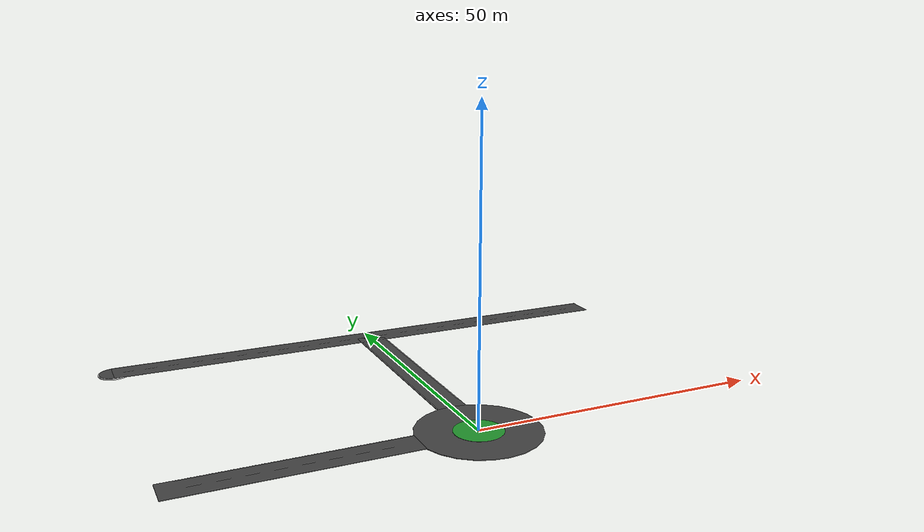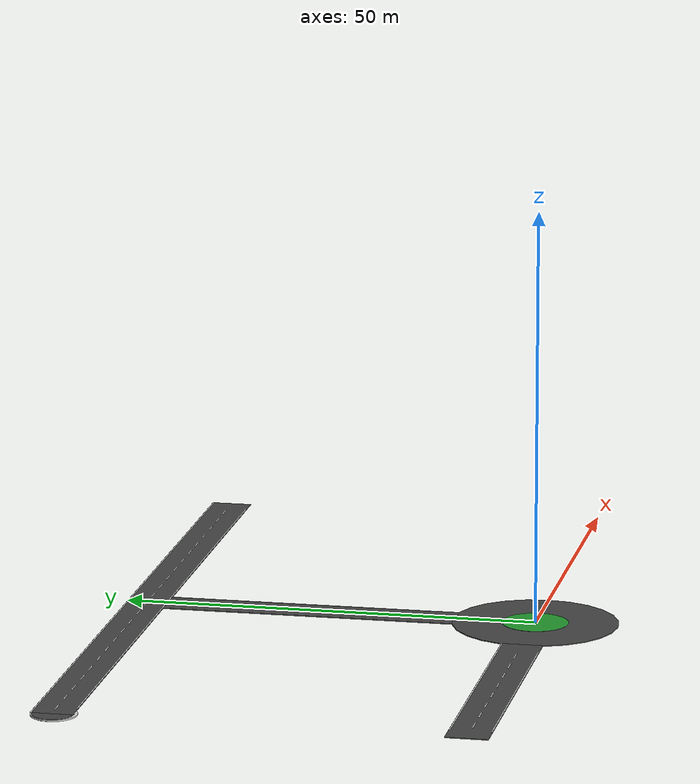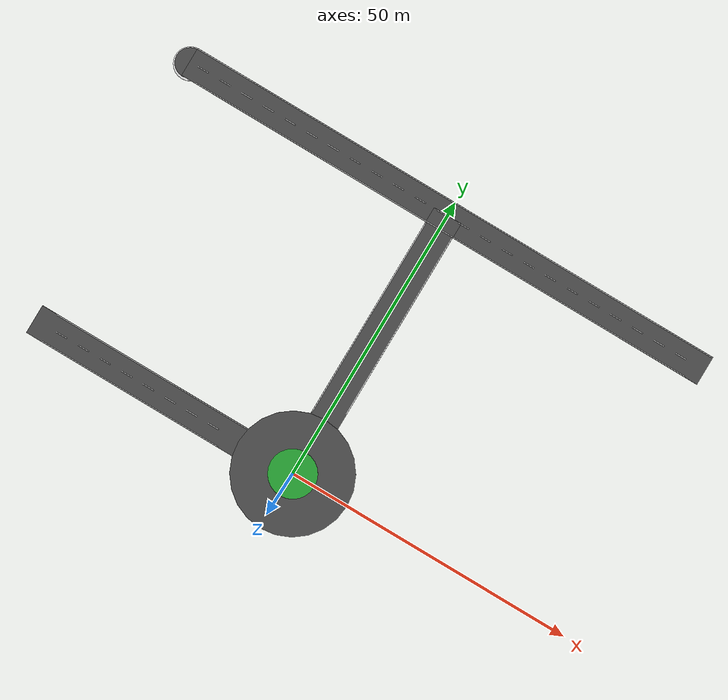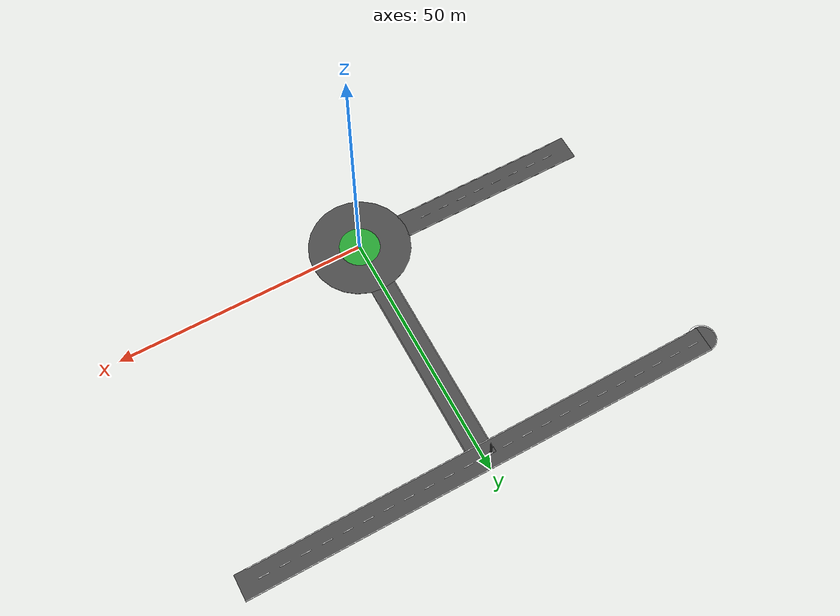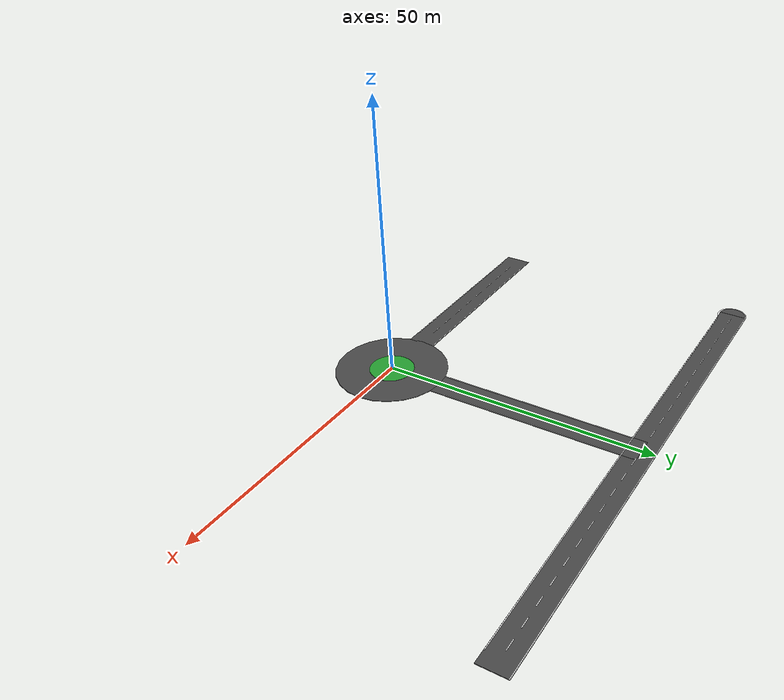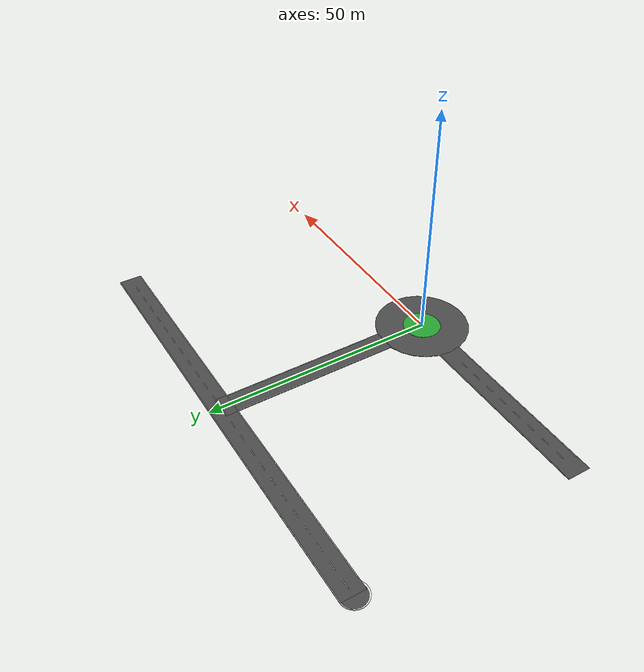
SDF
<sdf version="1.7">
 <world name="sehir_dunyasi_final_son_hali">
  <model name="kesisim_merkez_kavsak">
   <static>1</static>
   <link name="k_link">
    <collision name="k_asfalt_c">
     <geometry><cylinder><radius>10</radius><length>0.1</length></cylinder></geometry>
    </collision>
    <visual name="k_asfalt_v">
     <geometry><cylinder><radius>10</radius><length>0.1</length></cylinder></geometry>
     <material><script><name>Gazebo/DarkGrey</name><uri>__default__</uri></script></material>
    </visual>
    <collision name="k_ada_c">
     <pose>0 0 0.05 0 -0 0</pose>
     <geometry><cylinder><radius>4</radius><length>0.04</length></cylinder></geometry>
    </collision>
    <visual name="k_ada_v">
     <pose>0 0 0.05 0 -0 0</pose>
     <geometry><cylinder><radius>4</radius><length>0.04</length></cylinder></geometry>
     <material><script><name>Gazebo/Green</name><uri>__default__</uri></script></material>
    </visual>
   </link>
  </model>
  <model name="yol_m_k">
   <static>1</static>
   <pose>-1.3e-05 28.6156 0 0 -0 1.5707</pose>
   <link name="link">
    <collision name="c"><geometry><box><size>38 5 0.1</size></box></geometry></collision>
    <visual name="v">
     <geometry><box><size>38 5 0.1</size></box></geometry>
     <material><script><name>Gazebo/DarkGrey</name><uri>__default__</uri></script></material>
    </visual>
    <visual name="vc1">
     <pose>-14 0 0.05 0 -0 0</pose>
     <geometry><box><size>2 0.15 0.005</size></box></geometry>
     <material><script><name>Gazebo/White</name><uri>__default__</uri></script></material>
    </visual>
    <visual name="vc2">
     <pose>-10 0 0.05 0 -0 0</pose>
     <geometry><box><size>2 0.15 0.005</size></box></geometry>
     <material><script><name>Gazebo/White</name><uri>__default__</uri></script></material>
    </visual>
    <visual name="vc3">
     <pose>-6 0 0.05 0 -0 0</pose>
     <geometry><box><size>2 0.15 0.005</size></box></geometry>
     <material><script><name>Gazebo/White</name><uri>__default__</uri></script></material>
    </visual>
    <visual name="vc4">
     <pose>-2 0 0.05 0 -0 0</pose>
     <geometry><box><size>2 0.15 0.005</size></box></geometry>
     <material><script><name>Gazebo/White</name><uri>__default__</uri></script></material>
    </visual>
    <visual name="vc5">
     <pose>2 0 0.05 0 -0 0</pose>
     <geometry><box><size>2 0.15 0.005</size></box></geometry>
     <material><script><name>Gazebo/White</name><uri>__default__</uri></script></material>
    </visual>
    <visual name="vc6">
     <pose>6 0 0.05 0 -0 0</pose>
     <geometry><box><size>2 0.15 0.005</size></box></geometry>
     <material><script><name>Gazebo/White</name><uri>__default__</uri></script></material>
    </visual>
    <visual name="vc7">
     <pose>10 0 0.05 0 -0 0</pose>
     <geometry><box><size>2 0.15 0.005</size></box></geometry>
     <material><script><name>Gazebo/White</name><uri>__default__</uri></script></material>
    </visual>
    <visual name="vc8">
     <pose>14 0 0.05 0 -0 0</pose>
     <geometry><box><size>2 0.15 0.005</size></box></geometry>
     <material><script><name>Gazebo/White</name><uri>__default__</uri></script></material>
    </visual>
    <visual name="sag_cizgi">
     <pose>0 2.4 0.05 0 -0 0</pose>
     <geometry><box><size>32.5 0.15 0.005</size></box></geometry>
     <material><script><name>Gazebo/White</name><uri>__default__</uri></script></material>
    </visual>
    <visual name="sol_cizgi">
     <pose>0 -2.4 0.05 0 -0 0</pose>
     <geometry><box><size>32.5 0.15 0.005</size></box></geometry>
     <material><script><name>Gazebo/White</name><uri>__default__</uri></script></material>
    </visual>
   </link>
  </model>
  <model name="yol_m_b">
   <static>1</static>
   <pose>-28.606 0 0 0 -0 0</pose>
   <link name="link">
    <collision name="c"><geometry><box><size>38 5 0.1</size></box></geometry></collision>
    <visual name="v">
     <geometry><box><size>38 5 0.1</size></box></geometry>
     <material><script><name>Gazebo/DarkGrey</name><uri>__default__</uri></script></material>
    </visual>
    <visual name="vc1">
     <pose>-14 0 0.05 0 -0 0</pose>
     <geometry><box><size>2 0.15 0.005</size></box></geometry>
     <material><script><name>Gazebo/White</name><uri>__default__</uri></script></material>
    </visual>
    <visual name="vc2">
     <pose>-10 0 0.05 0 -0 0</pose>
     <geometry><box><size>2 0.15 0.005</size></box></geometry>
     <material><script><name>Gazebo/White</name><uri>__default__</uri></script></material>
    </visual>
    <visual name="vc3">
     <pose>-6 0 0.05 0 -0 0</pose>
     <geometry><box><size>2 0.15 0.005</size></box></geometry>
     <material><script><name>Gazebo/White</name><uri>__default__</uri></script></material>
    </visual>
    <visual name="vc4">
     <pose>-2 0 0.05 0 -0 0</pose>
     <geometry><box><size>2 0.15 0.005</size></box></geometry>
     <material><script><name>Gazebo/White</name><uri>__default__</uri></script></material>
    </visual>
    <visual name="vc5">
     <pose>2 0 0.05 0 -0 0</pose>
     <geometry><box><size>2 0.15 0.005</size></box></geometry>
     <material><script><name>Gazebo/White</name><uri>__default__</uri></script></material>
    </visual>
    <visual name="vc6">
     <pose>6 0 0.05 0 -0 0</pose>
     <geometry><box><size>2 0.15 0.005</size></box></geometry>
     <material><script><name>Gazebo/White</name><uri>__default__</uri></script></material>
    </visual>
    <visual name="vc7">
     <pose>10 0 0.05 0 -0 0</pose>
     <geometry><box><size>2 0.15 0.005</size></box></geometry>
     <material><script><name>Gazebo/White</name><uri>__default__</uri></script></material>
    </visual>
    <visual name="vc8">
     <pose>14 0 0.05 0 -0 0</pose>
     <geometry><box><size>2 0.15 0.005</size></box></geometry>
     <material><script><name>Gazebo/White</name><uri>__default__</uri></script></material>
    </visual>
    <visual name="sag_cizgi">
     <pose>0 2.4 0.05 0 -0 0</pose>
     <geometry><box><size>32.5 0.15 0.005</size></box></geometry>
     <material><script><name>Gazebo/White</name><uri>__default__</uri></script></material>
    </visual>
    <visual name="sol_cizgi">
     <pose>0 -2.4 0.05 0 -0 0</pose>
     <geometry><box><size>32.5 0.15 0.005</size></box></geometry>
     <material><script><name>Gazebo/White</name><uri>__default__</uri></script></material>
    </visual>
   </link>
  </model>
  <model name="yol_k_yatay">
   <static>1</static>
   <pose>0 47.5 0 0 -0 0</pose>
   <link name="link">
    <collision name="c"><geometry><box><size>95 5 0.1</size></box></geometry></collision>
    <visual name="v">
     <geometry><box><size>95 5 0.1</size></box></geometry>
     <material><script><name>Gazebo/DarkGrey</name><uri>__default__</uri></script></material>
    </visual>
    <visual name="vc1">
     <pose>-45 0 0.05 0 -0 0</pose>
     <geometry><box><size>2 0.15 0.005</size></box></geometry>
     <material><script><name>Gazebo/White</name><uri>__default__</uri></script></material>
    </visual>
    <visual name="vc2">
     <pose>-41 0 0.05 0 -0 0</pose>
     <geometry><box><size>2 0.15 0.005</size></box></geometry>
     <material><script><name>Gazebo/White</name><uri>__default__</uri></script></material>
    </visual>
    <visual name="vc3">
     <pose>-37 0 0.05 0 -0 0</pose>
     <geometry><box><size>2 0.15 0.005</size></box></geometry>
     <material><script><name>Gazebo/White</name><uri>__default__</uri></script></material>
    </visual>
    <visual name="vc4">
     <pose>-33 0 0.05 0 -0 0</pose>
     <geometry><box><size>2 0.15 0.005</size></box></geometry>
     <material><script><name>Gazebo/White</name><uri>__default__</uri></script></material>
    </visual>
    <visual name="vc5">
     <pose>-29 0 0.05 0 -0 0</pose>
     <geometry><box><size>2 0.15 0.005</size></box></geometry>
     <material><script><name>Gazebo/White</name><uri>__default__</uri></script></material>
    </visual>
    <visual name="vc6">
     <pose>-25 0 0.05 0 -0 0</pose>
     <geometry><box><size>2 0.15 0.005</size></box></geometry>
     <material><script><name>Gazebo/White</name><uri>__default__</uri></script></material>
    </visual>
    <visual name="vc7">
     <pose>-21 0 0.05 0 -0 0</pose>
     <geometry><box><size>2 0.15 0.005</size></box></geometry>
     <material><script><name>Gazebo/White</name><uri>__default__</uri></script></material>
    </visual>
    <visual name="vc8">
     <pose>-17 0 0.05 0 -0 0</pose>
     <geometry><box><size>2 0.15 0.005</size></box></geometry>
     <material><script><name>Gazebo/White</name><uri>__default__</uri></script></material>
    </visual>
    <visual name="vc9">
     <pose>-13 0 0.05 0 -0 0</pose>
     <geometry><box><size>2 0.15 0.005</size></box></geometry>
     <material><script><name>Gazebo/White</name><uri>__default__</uri></script></material>
    </visual>
    <visual name="vc10">
     <pose>-9 0 0.05 0 -0 0</pose>
     <geometry><box><size>2 0.15 0.005</size></box></geometry>
     <material><script><name>Gazebo/White</name><uri>__default__</uri></script></material>
    </visual>
    <visual name="vc11">
     <pose>-5 0 0.05 0 -0 0</pose>
     <geometry><box><size>2 0.15 0.005</size></box></geometry>
     <material><script><name>Gazebo/White</name><uri>__default__</uri></script></material>
    </visual>
    <visual name="vc12">
     <pose>-1 0 0.05 0 -0 0</pose>
     <geometry><box><size>2 0.15 0.005</size></box></geometry>
     <material><script><name>Gazebo/White</name><uri>__default__</uri></script></material>
    </visual>
    <visual name="vc13">
     <pose>3 0 0.05 0 -0 0</pose>
     <geometry><box><size>2 0.15 0.005</size></box></geometry>
     <material><script><name>Gazebo/White</name><uri>__default__</uri></script></material>
    </visual>
    <visual name="vc14">
     <pose>7 0 0.05 0 -0 0</pose>
     <geometry><box><size>2 0.15 0.005</size></box></geometry>
     <material><script><name>Gazebo/White</name><uri>__default__</uri></script></material>
    </visual>
    <visual name="vc15">
     <pose>11 0 0.05 0 -0 0</pose>
     <geometry><box><size>2 0.15 0.005</size></box></geometry>
     <material><script><name>Gazebo/White</name><uri>__default__</uri></script></material>
    </visual>
    <visual name="vc16">
     <pose>15 0 0.05 0 -0 0</pose>
     <geometry><box><size>2 0.15 0.005</size></box></geometry>
     <material><script><name>Gazebo/White</name><uri>__default__</uri></script></material>
    </visual>
    <visual name="vc17">
     <pose>19 0 0.05 0 -0 0</pose>
     <geometry><box><size>2 0.15 0.005</size></box></geometry>
     <material><script><name>Gazebo/White</name><uri>__default__</uri></script></material>
    </visual>
    <visual name="vc18">
     <pose>23 0 0.05 0 -0 0</pose>
     <geometry><box><size>2 0.15 0.005</size></box></geometry>
     <material><script><name>Gazebo/White</name><uri>__default__</uri></script></material>
    </visual>
    <visual name="vc19">
     <pose>27 0 0.05 0 -0 0</pose>
     <geometry><box><size>2 0.15 0.005</size></box></geometry>
     <material><script><name>Gazebo/White</name><uri>__default__</uri></script></material>
    </visual>
    <visual name="vc20">
     <pose>31 0 0.05 0 -0 0</pose>
     <geometry><box><size>2 0.15 0.005</size></box></geometry>
     <material><script><name>Gazebo/White</name><uri>__default__</uri></script></material>
    </visual>
    <visual name="vc21">
     <pose>35 0 0.05 0 -0 0</pose>
     <geometry><box><size>2 0.15 0.005</size></box></geometry>
     <material><script><name>Gazebo/White</name><uri>__default__</uri></script></material>
    </visual>
    <visual name="vc22">
     <pose>39 0 0.05 0 -0 0</pose>
     <geometry><box><size>2 0.15 0.005</size></box></geometry>
     <material><script><name>Gazebo/White</name><uri>__default__</uri></script></material>
    </visual>
    <visual name="vc23">
     <pose>43 0 0.05 0 -0 0</pose>
     <geometry><box><size>2 0.15 0.005</size></box></geometry>
     <material><script><name>Gazebo/White</name><uri>__default__</uri></script></material>
    </visual>
    <visual name="sag_cizgi">
     <pose>0 2.4 0.05 0 -0 0</pose>
     <geometry><box><size>95 0.15 0.005</size></box></geometry>
     <material><script><name>Gazebo/White</name><uri>__default__</uri></script></material>
    </visual>
    <visual name="sol_cizgi">
     <pose>0 -2.4 0.05 0 -0 0</pose>
     <geometry><box><size>90.35 0.15 0.005</size></box></geometry>
     <material><script><name>Gazebo/White</name><uri>__default__</uri></script></material>
    </visual>
   </link>
  </model>
  <model name="unit_box_clone_5">
   <static>1</static>
   <pose>-2.40094 11.235 0.051476 -0 -9e-06 -3e-06</pose>
   <link name="link">
    <inertial>
     <mass>1</mass>
     <inertia>
      <ixx>0.166667</ixx>
      <ixy>0</ixy>
      <ixz>0</ixz>
      <iyy>0.166667</iyy>
      <iyz>0</iyz>
      <izz>0.166667</izz>
     </inertia>
    </inertial>
    <collision name="collision"><geometry><box><size>0.149117 2.48727 0.003914</size></box></geometry></collision>
    <visual name="visual">
     <geometry><box><size>0.149117 2.48727 0.003914</size></box></geometry>
     <material>
      <script><name>Gazebo/White</name><uri>file://media/materials/scripts/gazebo.material</uri></script>
     </material>
    </visual>
   </link>
  </model>
  <model name="unit_box_clone_4">
   <static>1</static>
   <pose>-11.1534 2.39955 0.05068 9e-06 -0 -1.57076</pose>
   <link name="link">
    <inertial>
     <mass>1</mass>
     <inertia>
      <ixx>0.166667</ixx>
      <ixy>0</ixy>
      <ixz>0</ixz>
      <iyy>0.166667</iyy>
      <iyz>0</iyz>
      <izz>0.166667</izz>
     </inertia>
    </inertial>
    <collision name="collision"><geometry><box><size>0.149117 2.96254 0.003914</size></box></geometry></collision>
    <visual name="visual">
     <geometry><box><size>0.149117 2.96254 0.003914</size></box></geometry>
     <material>
      <script><name>Gazebo/White</name><uri>file://media/materials/scripts/gazebo.material</uri></script>
     </material>
    </visual>
   </link>
  </model>
  <model name="unit_cylinder_clone_0_clone_0">
   <static>1</static>
   <pose>-47.2668 47.2695 -0.061293 0 -2e-06 0.003834</pose>
   <link name="link">
    <inertial>
     <mass>1</mass>
     <inertia><ixx>0.145833</ixx><ixy>0</ixy><ixz>0</ixz><iyy>0.145833</iyy><iyz>0</iyz><izz>0.125</izz></inertia>
    </inertial>
    <collision name="collision">
     <geometry><cylinder><radius>2.72533</radius><length>0.146656</length></cylinder></geometry>
    </collision>
    <visual name="visual">
     <geometry><cylinder><radius>2.72533</radius><length>0.146656</length></cylinder></geometry>
     <material>
      <script><name>Gazebo/White</name><uri>file://media/materials/scripts/gazebo.material</uri></script>
     </material>
    </visual>
   </link>
  </model>
  <model name="unit_cylinder_clone_clone_clone_0">
   <static>1</static>
   <pose>-47.3535 47.3621 -0.081321 0 -2e-06 0.003834</pose>
   <link name="link">
    <inertial>
     <mass>1</mass>
     <inertia><ixx>0.145833</ixx><ixy>0</ixy><ixz>0</ixz><iyy>0.145833</iyy><iyz>0</iyz><izz>0.125</izz></inertia>
    </inertial>
    <collision name="collision">
     <geometry><cylinder><radius>2.44847</radius><length>0.261634</length></cylinder></geometry>
    </collision>
    <visual name="visual">
     <geometry><cylinder><radius>2.44847</radius><length>0.261634</length></cylinder></geometry>
     <material>
      <script><name>Gazebo/DarkGrey</name><uri>file://media/materials/scripts/gazebo.material</uri></script>
     </material>
    </visual>
   </link>
  </model>
 </world>
</sdf>
